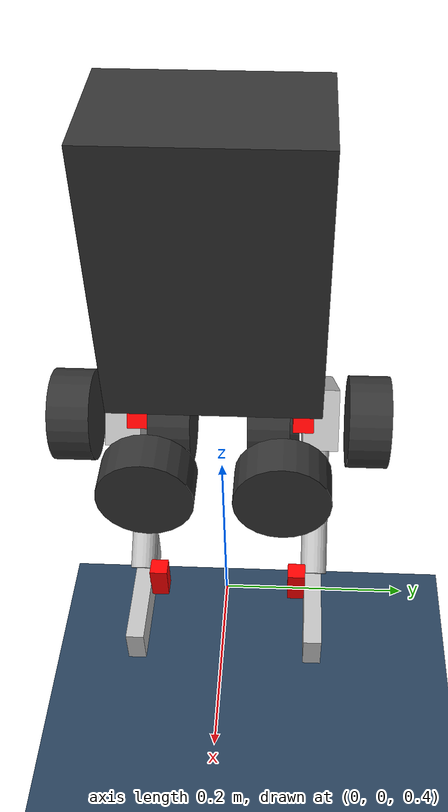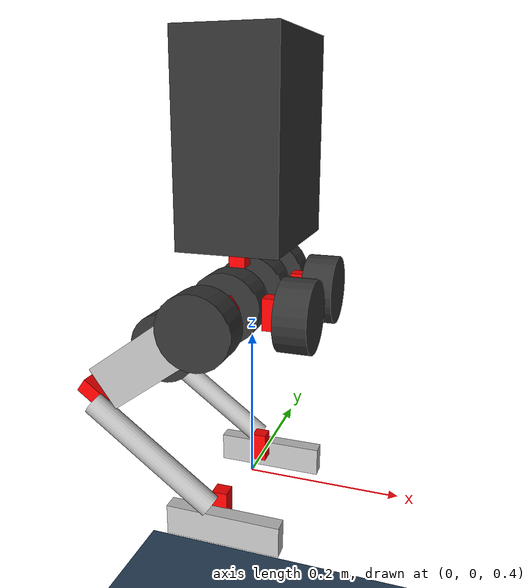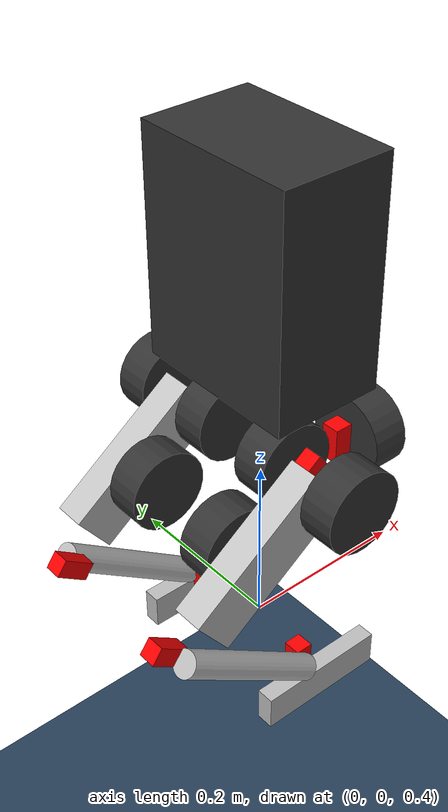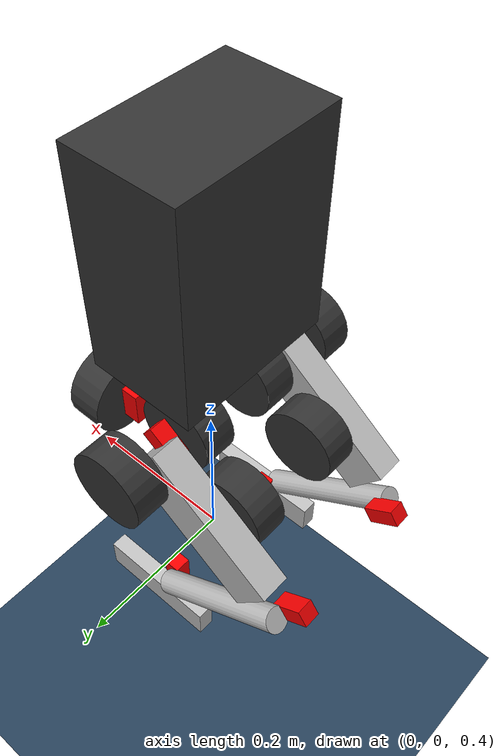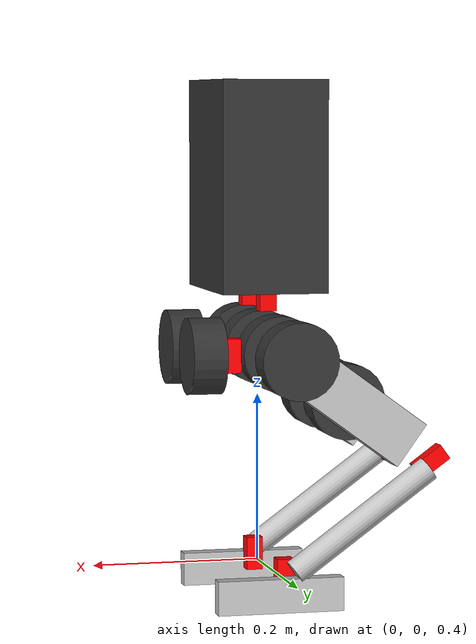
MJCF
<mujoco model="mini_biped">
    <compiler angle="radian"/>
    <size njmax="500" nconmax="100" />
    <option timestep='0.0001' gravity='0 0 -9.81'/>

    <default>
          <default class="force-torque">
        <site type="box" size=".01 .01 .02" rgba="1 0 0 1" />
      </default>
    </default>

    <visual>
        <headlight diffuse="0.6 0.6 0.6" ambient="0.3 0.3 0.3" specular="0 0 0" />
        <rgba haze="0.15 0.25 0.35 1" />

        <global offheight="2160" offwidth="3840"/>
        <quality offsamples="8"/>

    </visual>
    <asset>
        <material name="black" rgba="0.2 0.2 0.2 1" />
        <material name="silver" rgba="0.75 0.75 0.75 1" />
        <material name="grey" rgba="0.5 0.5 0.5 1" />

        <texture type="skybox" builtin="gradient" rgb1="0.3 0.5 0.7" rgb2="0 0 0" width="512" height="3072" />
        <texture type="2d" name="groundplane" builtin="checker" mark="edge" rgb1="0.2 0.3 0.4" rgb2="0.1 0.2 0.3" markrgb="0.8 0.8 0.8" width="300" height="300" />
        <material name="groundplane" texture="groundplane" texuniform="true" texrepeat="5 5" reflectance="0.5" />
        <hfield name='terrain' nrow='500' ncol='500' size='10 10 2.0 0.1'/>

    </asset>

    <worldbody>
        <light name="spotlight0" mode="targetbodycom" target="trunk" pos="0 0 10" cutoff="60" />
        <light name="spotlight1" mode="targetbodycom" target="trunk" pos="0.5 0 10" cutoff="60" />
        <geom name="floor" size="0 0 .125" type="plane" material="groundplane" conaffinity="15" condim="3" />

        <body name="trunk" pos="0 0 0.85">
            <camera name="side" pos="0 -3 0.0" euler="1.57 0 0" mode="track"/>
            <camera name="back" pos="-3 0 1" xyaxes="0 -1 0 1 0 2" mode="trackcom" />
            <camera name="track" pos="0 -3 1" zaxis="0 -1 0.5" mode="track" />

            <freejoint name="root" />
            <site name="root" class="force-torque"/>
            <inertial pos="0.0 0.0 0.0" mass="5.89" diaginertia="0.0479073  0.03785748 0.02538835" />
            <geom size="0.0625 0.095 0.124" type="box" material="black" />
            <geom size="0.0005 0.0005 0.0005" type="box" material="black" />
            <camera name="egocentric" pos=".09 0 0" euler="0 -1.0472 -1.5708" fovy="120"/>

            <body name="L_hip" pos="0 0.047 -0.1265">
                <inertial pos="0.0651881 0.0105682 -0.05877" quat="-0.0733308 0.865238 0.13671 0.476756" mass="0.874" diaginertia="0.00147219 0.00132639 0.000517101" />
                <joint name="L_hip_joint" pos="0 0 0" axis="0 0 1" limited="true" range="-0.261799 0.261799" damping="0.5" frictionloss="0.1" />
                <site name="L_hip_sensor" class="force-torque"/>
                <geom size="0.045 0.02" material="black" pos="0.079 0.015 -0.0705" quat="0.707107 0 0.707107 0" type="cylinder" />
                <body name="L_hip2" pos="0.0465 0.015 -0.0705">
                    <inertial pos="-0.0565847 -0.0143919 0" quat="0.490371 0.490371 0.509447 0.509447" mass="0.745" diaginertia="0.000770832 0.000552938 0.000493077" />
                    <joint name="L_hip2_joint" pos="0 0 0" axis="1 0 0" limited="true" range="-0.523599 0.261799" damping="0.5" frictionloss="0.1" />
                    <site name="L_hip2_sensor" class="force-torque"/>
                    <geom size="0.045 0.02" material="black" pos="-0.06 -0.015 0" quat="0.707107 -0.707107 0 0" type="cylinder" />
                    <body name="L_thigh" pos="-0.06 0.018 0" quat="0.891007 0 0.45399 0">
                        <inertial pos="-4.85963e-05 0.0199702 -0.0592828" quat="0.98238 -0.186894 0.000253273 0.000716486" mass="1.942" diaginertia="0.0111784 0.0106783 0.00282909" />
                        <joint name="L_thigh_joint" pos="0 0 0" axis="0 1 0" limited="true" range="-3.14 3.14" damping="0.5"/>
                        <site name="L_thigh_sensor" class="force-torque"/>
                        <geom size="0.03 0.0175 0.09" pos="0 0.0175 -0.09" type="box" material="silver" />
                        <geom size="0.045 0.02" material="black" pos="0 0.0625 0" quat="0.707107 -0.707107 0 0" type="cylinder" />
                        <geom size="0.045 0.02" material="black" pos="0 -0.0225 -0.097" quat="0.707107 -0.707107 0 0" type="cylinder" />
                        <body name="L_calf" pos="0 0 -0.22" quat="0.587785 0 -0.809017 0">
                            <inertial pos="0 0.020417 -0.1141" mass="0.303" diaginertia="0.001911 0.00191038 6.8352e-05" />
                            <joint name="L_calf_joint" pos="0 0 0" axis="0 1 0" limited="true" range="-3.14 3.14" damping="0.5"/>
                            <site name="L_calf_sensor" class="force-torque"/>
                            <geom size="0.015 0.1" pos="0 0.02 -0.11" type="cylinder" material="silver" />
                            <body name="L_toe" pos="0 0 -0.22" quat="0.891007 0 0.45399 0">
                                <inertial pos="0.010569 0.017949 -0.017118" quat="0.5 0.5 0.5 0.5" mass="0.214" diaginertia="0.000290752 0.000249491 5.7298e-05" />
                                <joint name="L_toe_joint" pos="0 0 0" axis="0 1 0" limited="true" range="-0.7853 0.7853" damping="0.5"/>
                                <site name="L_toe_sensor" class="force-torque"/>
                                <geom size="0.075 0.01 0.02" pos="0.01 0.0194 -0.02" type="box" material="silver" />
                            </body>
                        </body>
                    </body>
                </body>
            </body>
            <body name="R_hip" pos="0 -0.047 -0.1265">
                <inertial pos="0.0651881 -0.011743 -0.05877" quat="0.054396 0.871604 -0.102394 0.476301" mass="0.874" diaginertia="0.00144737 0.00130361 0.000518878" />
                <joint name="R_hip_joint" pos="0 0 0" axis="0 0 1" limited="true" range="-0.261799 0.261799" damping="0.5" frictionloss="0.1" />
                <site name="R_hip_sensor" class="force-torque"/>
                <geom size="0.045 0.02" material="black" pos="0.079 -0.015 -0.0705" quat="0.707107 0 0.707107 0" type="cylinder" />
                <body name="R_hip2" pos="0.0465 -0.015 -0.0705">
                    <inertial pos="-0.0565847 0.0117826 0" quat="0.554078 0.554078 0.439315 0.439315" mass="0.745" diaginertia="0.000783544 0.000603818 0.000531245" />
                    <joint name="R_hip2_joint" pos="0 0 0" axis="1 0 0" limited="true" range="-0.261799 0.523599" damping="0.5" frictionloss="0.1" />
                    <site name="R_hip2_sensor" class="force-torque"/>
                    <geom size="0.045 0.02" material="black" pos="-0.06 0.015 0" quat="0.707107 -0.707107 0 0" type="cylinder" />
                    <body name="R_thigh" pos="-0.06 -0.018 0" quat="0.891007 0 0.45399 0">
                        <inertial pos="-4.85963e-05 -0.0199702 -0.0592828" quat="0.98238 0.186894 0.000253273 -0.000716486" mass="1.942" diaginertia="0.0111784 0.0106783 0.00282909" />
                        <joint name="R_thigh_joint" pos="0 0 0" axis="0 1 0" limited="true" range="-3.14 3.14" damping="0.5" />
                        <site name="R_thigh_sensor" class="force-torque"/>
                        <geom size="0.03 0.0175 0.09" pos="0 -0.0175 -0.09" type="box" material="silver" />
                        <geom size="0.045 0.02" material="black" pos="0 -0.0625 0" quat="0.707107 -0.707107 0 0" type="cylinder" />
                        <geom size="0.045 0.02" material="black" pos="0 0.0225 -0.097" quat="0.707107 -0.707107 0 0" type="cylinder" />
                        <body name="R_calf" pos="0 0 -0.22" quat="0.587785 0 -0.809017 0">
                            <inertial pos="0 -0.020417 -0.1141" mass="0.303" diaginertia="0.001911 0.00191038 6.8352e-05" />
                            <joint name="R_calf_joint" pos="0 0 0" axis="0 1 0" limited="true" range="-3.14 3.14" damping="0.5"/>
                            <site name="R_calf_sensor" class="force-torque"/>
                            <geom size="0.015 0.1" pos="0 -0.02 -0.11" type="cylinder" material="silver" />
                            <body name="R_toe" pos="0 0 -0.22" quat="0.891007 0 0.45399 0">
                                <inertial pos="0.010569 -0.017949 -0.017118" quat="0.5 0.5 0.5 0.5" mass="0.214" diaginertia="0.000290752 0.000249491 5.7298e-05" />
                                <joint name="R_toe_joint" pos="0 0 0" axis="0 1 0" limited="true" range="-0.7853 0.7853" damping="0.5"/>
                                <site name="R_toe_sensor" class="force-torque"/>
                                <geom size="0.075 0.01 0.02" pos="0.01 -0.0194 -0.02" type="box" material="silver" />
                            </body>
                        </body>
                    </body>
                </body>
            </body>
        </body>

    </worldbody>

    <actuator>
        <motor name="L_hip_joint" joint="L_hip_joint" ctrllimited="true" ctrlrange="-30 30" />
        <motor name="L_hip2_joint" joint="L_hip2_joint" ctrllimited="true" ctrlrange="-30 30"/>
        <motor name="L_thigh_joint" joint="L_thigh_joint" ctrllimited="true" ctrlrange="-30 30"/>
        <motor name="L_calf_joint" joint="L_calf_joint" ctrllimited="true" ctrlrange="-50 50"/>
        <motor name="L_toe_joint" joint="L_toe_joint" ctrllimited="true" ctrlrange="-30 30" />

        <motor name="R_hip_joint" joint="R_hip_joint" ctrllimited="true" ctrlrange="-30 30"/>
        <motor name="R_hip2_joint" joint="R_hip2_joint" ctrllimited="true" ctrlrange="-30 30"/>
        <motor name="R_thigh_joint" joint="R_thigh_joint" ctrllimited="true" ctrlrange="-30 30" />
        <motor name="R_calf_joint" joint="R_calf_joint" ctrllimited="true" ctrlrange="-50 50"/>
        <motor name="R_toe_joint" joint="R_toe_joint" ctrllimited="true" ctrlrange="-30 30"/>
    </actuator>

    <sensor>
        <!-- Torso sensors -->
        <accelerometer name="torso_accel" site="root"/>
        <velocimeter   name="torso_vel"   site="root"/>
        <gyro          name="torso_gyro"  site="root"/>

        <!-- Left leg torque sensors -->
        <torque name="L_hip_torque"   site="L_hip_sensor"  />
        <torque name="L_hip2_torque"  site="L_hip2_sensor" />
        <torque name="L_thigh_torque" site="L_thigh_sensor"/>
        <torque name="L_calf_torque"  site="L_calf_sensor" />
        <torque name="L_toe_torque"   site="L_toe_sensor"  />

        <!-- Right leg torque sensors -->
        <torque name="R_hip_torque"   site="R_hip_sensor"  />
        <torque name="R_hip2_torque"  site="R_hip2_sensor" />
        <torque name="R_thigh_torque" site="R_thigh_sensor"/>
        <torque name="R_calf_torque"  site="R_calf_sensor" />
        <torque name="R_toe_torque"   site="R_toe_sensor"  />

        <!-- Left leg actuatorfrc joints -->
        <actuatorfrc name="L_hip_actuatorfrc"   actuator="L_hip_joint"  />
        <actuatorfrc name="L_hip2_actuatorfrc"  actuator="L_hip2_joint" />
        <actuatorfrc name="L_thigh_actuatorfrc" actuator="L_thigh_joint"/>
        <actuatorfrc name="L_calf_actuatorfrc"  actuator="L_calf_joint" />
        <actuatorfrc name="L_toe_actuatorfrc"   actuator="L_toe_joint"  />

        <!-- Right leg actuatorfrc joints -->
        <actuatorfrc name="R_hip_actuatorfrc"   actuator="R_hip_joint"  />
        <actuatorfrc name="R_hip2_actuatorfrc"  actuator="R_hip2_joint" />
        <actuatorfrc name="R_thigh_actuatorfrc" actuator="R_thigh_joint"/>
        <actuatorfrc name="R_calf_actuatorfrc"  actuator="R_calf_joint" />
        <actuatorfrc name="R_toe_actuatorfrc"   actuator="R_toe_joint"  />

    </sensor>

    <equality>
        <weld name="world_root" active="true" body1="trunk" relpose="0 0 -0.85 0.01 0 0 0"/>
    </equality>

</mujoco>
